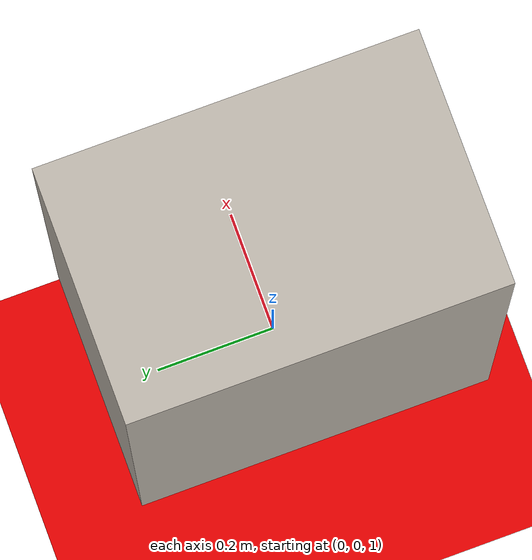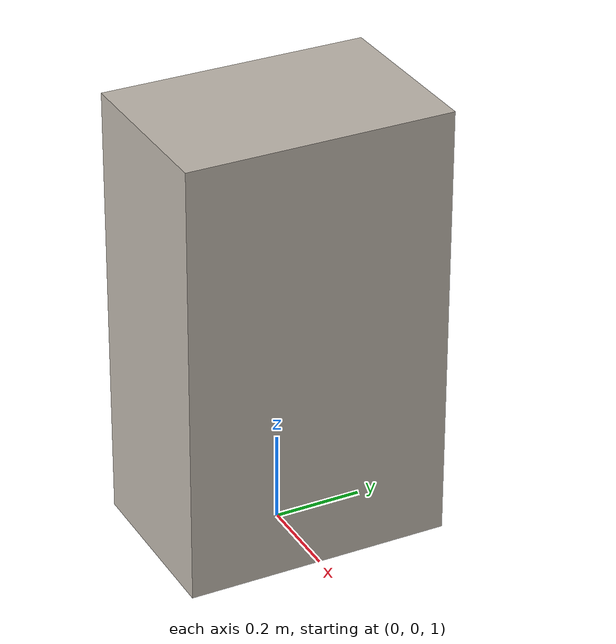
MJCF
<mujoco>
  <asset>
    <texture type="cube" name="hero_texture" file="D:\workspace\shitposts\tung_playground\heroes\complexo\texture.png"/>
    <material name="hero_material" texture="hero_texture"/>
  </asset>
  <worldbody>
    <light diffuse=".5 .5 .5" pos="0 0 3" dir="0 0 -1"/>
    <geom type="plane" size="1 1 0.1" rgba=".9 0 0 1"/>
    <body name="torso" pos="0 0 1.5">
      <joint type="free"/>
      <geom type="box" size=".2 .3 .5" material="hero_material"/>
      <body name="leg1" pos="0 .15 .0">
        <joint type="hinge" axis="1 0 0" pos="0 0 -.4"/>
        <geom type="capsule" size=".05 .2" material="hero_material"/>
      </body>
      <body name="leg2" pos="0 -.15 .0">
        <joint type="hinge" axis="1 0 0" pos="0 0 -.4"/>
        <geom type="capsule" size=".05 .2" material="hero_material"/>
      </body>
    </body>
  </worldbody>
</mujoco>
